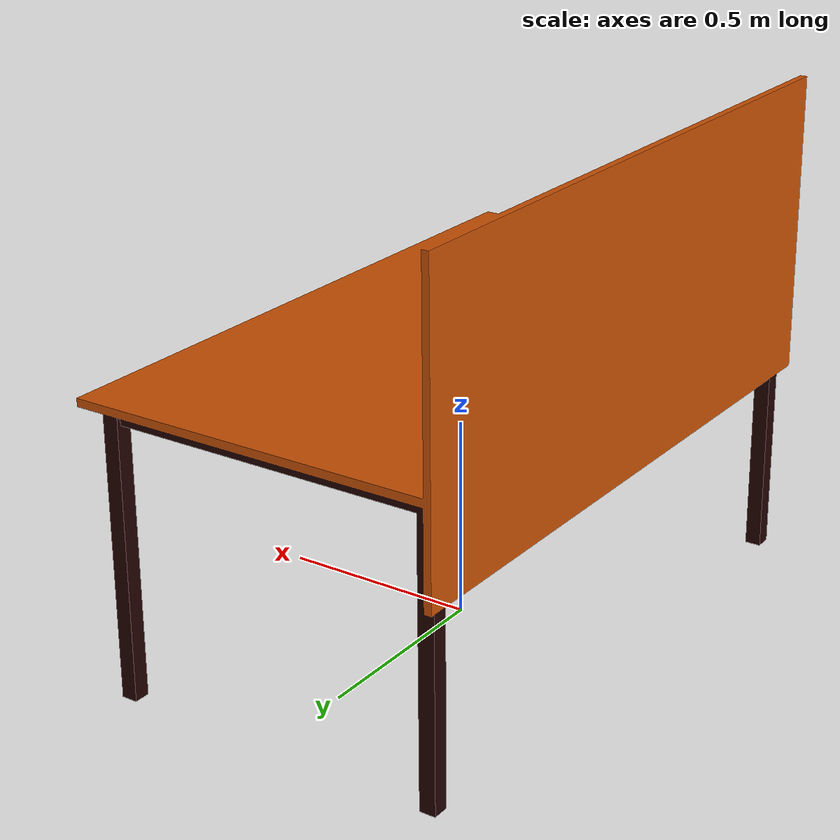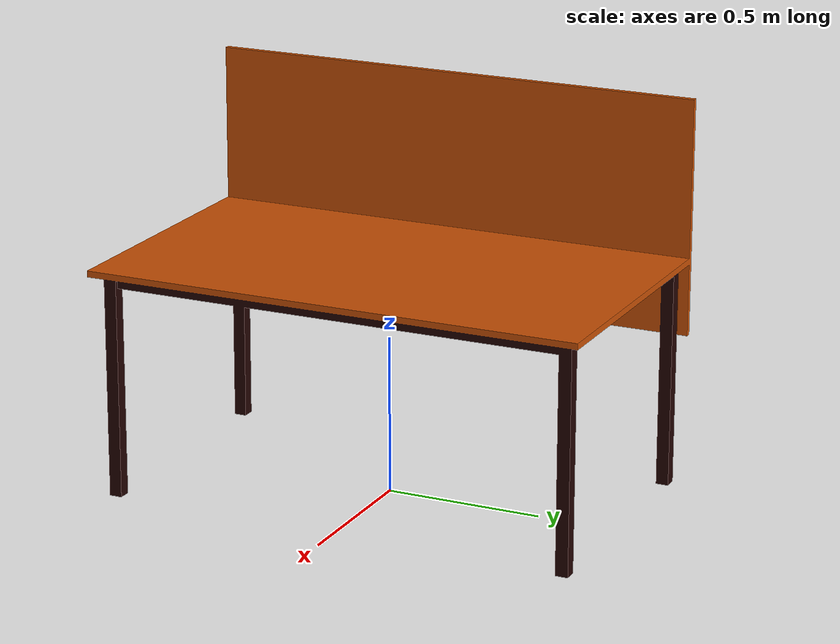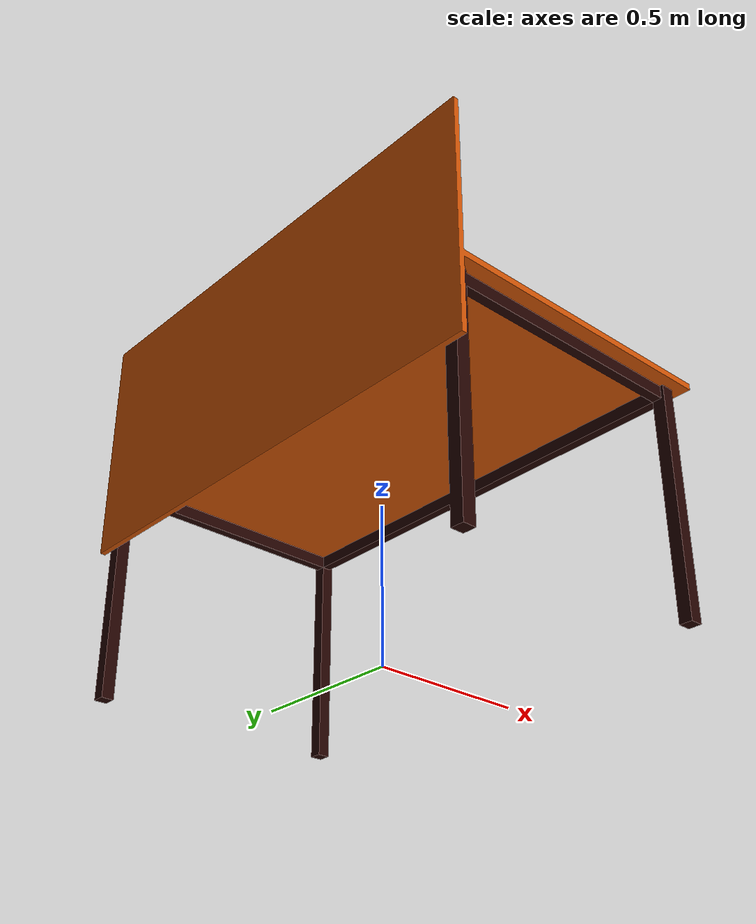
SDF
<?xml version="1.0" ?>
<sdf version="1.5">
  <model name="table_2">
    <static>true</static>
    <link name="table_2">
      <collision name="table_2">
        <pose>0 0 0 0 0 0</pose>
        <geometry>
          <mesh>
            <uri>model://table_2/meshes/model.dae</uri>
          </mesh>
        </geometry>
      </collision>

      <visual name="table_2">
      <cast_shadows>true</cast_shadows>
        <geometry>
          <mesh>
          <uri>model://table_2/meshes/model.dae</uri>
        </mesh>
        </geometry>
      </visual>
    </link>
  </model>
</sdf>
